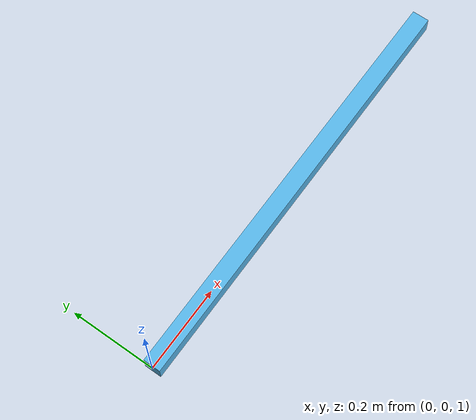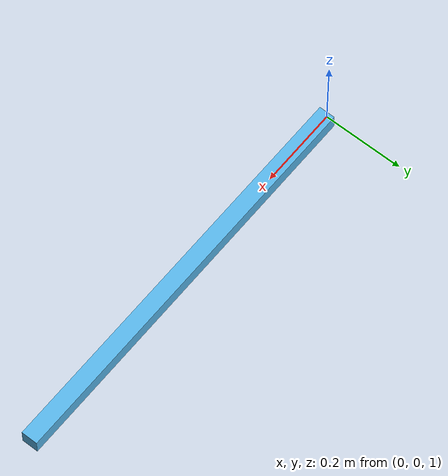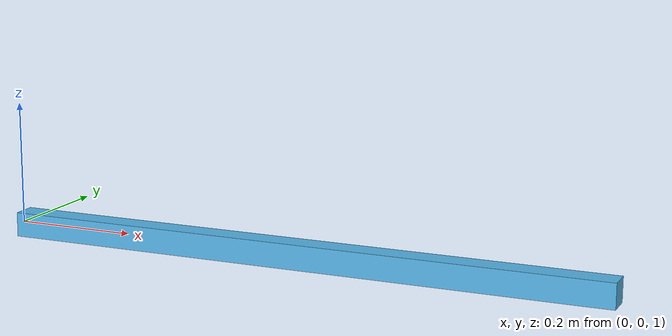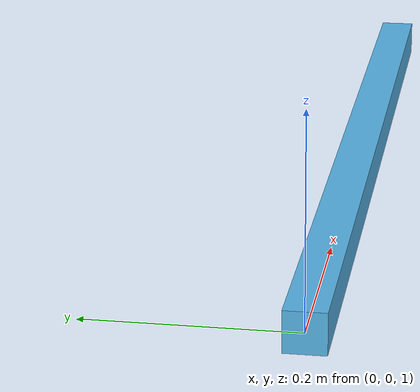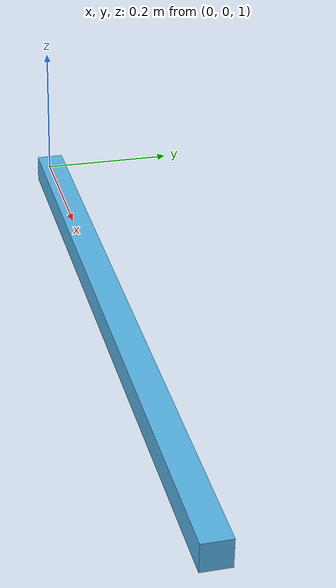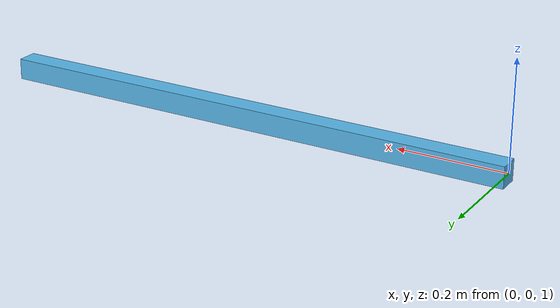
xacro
<?xml version="1.0" ?>
<robot xmlns:xacro="http://www.ros.org/wiki/xacro" name="synthetic_gravity_pendulum">
  <link name="base"/>
  <link name="pendulum">
    <inertial><origin xyz="0.5 0 0"/><mass value="1.0"/><inertia ixx="0.01" iyy="0.01" izz="0.01" ixy="0" ixz="0" iyz="0"/></inertial>
    <visual><origin xyz="0.5 0 0"/><geometry><box size="1 0.04 0.04"/></geometry></visual>
    <collision><origin xyz="0.5 0 0"/><geometry><box size="1 0.04 0.04"/></geometry></collision>
  </link>
  <joint name="pendulum_joint" type="revolute">
    <parent link="base"/><child link="pendulum"/><origin xyz="0 0 1" rpy="0 0 0"/>
    <axis xyz="0 1 0"/><limit lower="-1.5" upper="1.5" effort="20" velocity="4"/>
  </joint>
  <ros2_control name="SyntheticPendulum" type="system">
    <hardware><plugin>gz_ros2_control/GazeboSimSystem</plugin></hardware>
    <joint name="pendulum_joint">
      <command_interface name="effort"/>
      <state_interface name="position"/><state_interface name="velocity"/><state_interface name="effort"/>
    </joint>
  </ros2_control>
  <gazebo>
    <plugin filename="gz_ros2_control-system" name="gz_ros2_control::GazeboSimROS2ControlPlugin">
      <parameters>/workspace/controllers.yaml</parameters><hold_joints>false</hold_joints>
    </plugin>
  </gazebo>
</robot>
